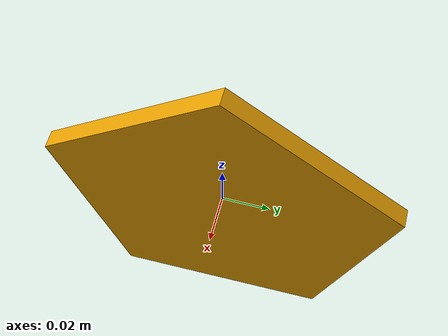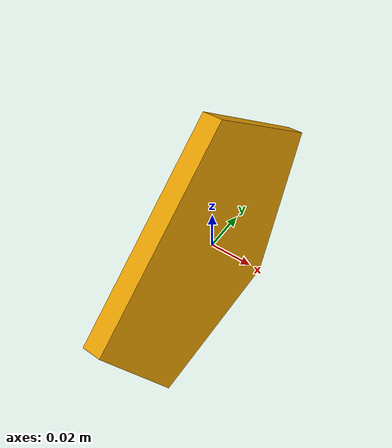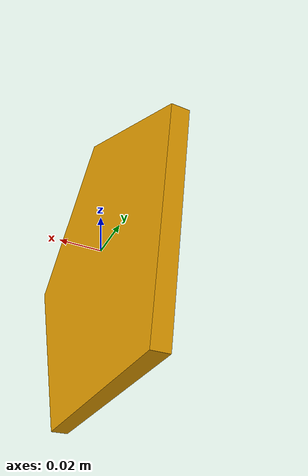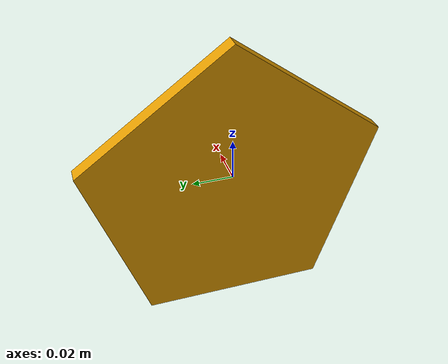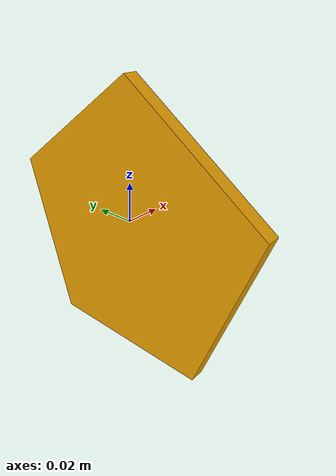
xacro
<?xml version="1.0"?>
<robot xmlns:xacro="http://www.ros.org/wiki/xacro" name="pentagon">
    <xacro:property name="height" value="0.14"/>
    <xacro:property name="side" value="${2*sin(radians(36))}"/>
    <xacro:property name="apothem" value="${cos(radians(36))}"/>
    <xacro:property name="start_height" value="${apothem + 1.0}"/>
    <xacro:property name="mesh_scale" value="${height / start_height}"/>
    <xacro:property name="x" value="${0.1 * mesh_scale}"/>
    <xacro:property name="y" value="${(side + 2*side*cos(radians(72))) * mesh_scale}"/>
    <xacro:property name="z" value="${height}"/>
    <xacro:property name="offset_z" value="${(apothem * mesh_scale) - z/2}"/>
    <xacro:property name="mass" value="1.0"/>
    <link name="base_link">
        <visual>
            <geometry>
                <mesh filename="pentagon.obj" scale="${mesh_scale} ${mesh_scale} ${mesh_scale}"/>
            </geometry>
            <origin xyz="0.0 0.0 ${offset_z}" rpy="${radians(90)} 0.0 0.0"/>
        </visual>
        <collision>
            <geometry>
                <box size="${x} ${y} ${z}"/>
            </geometry>
        </collision>
        <inertial>
            <mass value="${mass}"/>
            <inertia ixx="${mass * (z**2 + y**2) / 12}" ixy="0.0" ixz="0.0"
                     iyy="${mass * (z**2 + x**2) / 12}" iyz="0.0"
                     izz="${mass * (x**2 + y**2) / 12}"/>
        </inertial>
    </link>
</robot>
